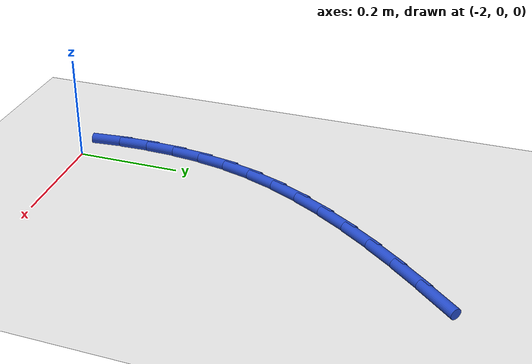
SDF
<sdf version="1.6">
 <world name="default">
  <model name="ground_plane">
   <static>1</static>
   <link name="link">
    <collision name="collision">
     <geometry><plane><normal>0 0 1</normal><size>100 100</size></plane></geometry>
     <surface><friction><ode><mu>100</mu><mu2>50</mu2></ode></friction></surface>
    </collision>
    <visual name="visual">
     <cast_shadows>0</cast_shadows>
     <geometry><plane><normal>0 0 1</normal><size>100 100</size></plane></geometry>
     <material>
      <script><uri>file://media/materials/scripts/gazebo.material</uri><name>Gazebo/WhiteGlow</name></script>
     </material>
    </visual>
   </link>
  </model>
  <model name="line">
   <link name="link_42">
    <pose>-1.7670566498943017 0.7211260672051247 0.01 0 1.57 0.8367380956712427</pose>
    <collision name="collision">
     <geometry><cylinder><radius>0.01</radius><length>0.08</length></cylinder></geometry>
    </collision>
    <visual name="visual">
     <material>
      <script><name>Gazebo/Blue</name><uri>file://media/materials/scripts/gazebo.material</uri></script>
     </material>
     <geometry><cylinder><radius>0.01</radius><length>0.08</length></cylinder></geometry>
    </visual>
   </link>
   <link name="link_43">
    <pose>-1.8085245185526984 0.6751656905597453 0.01 0 1.57 0.8675988459664883</pose>
    <collision name="collision">
     <geometry><cylinder><radius>0.01</radius><length>0.08</length></cylinder></geometry>
    </collision>
    <visual name="visual">
     <material>
      <script><name>Gazebo/Blue</name><uri>file://media/materials/scripts/gazebo.material</uri></script>
     </material>
     <geometry><cylinder><radius>0.01</radius><length>0.08</length></cylinder></geometry>
    </visual>
   </link>
   <link name="link_44">
    <pose>-1.8481152519373192 0.6284657887407599 0.01 0 1.57 0.9055203486958843</pose>
    <collision name="collision">
     <geometry><cylinder><radius>0.01</radius><length>0.08</length></cylinder></geometry>
    </collision>
    <visual name="visual">
     <material>
      <script><name>Gazebo/Blue</name><uri>file://media/materials/scripts/gazebo.material</uri></script>
     </material>
     <geometry><cylinder><radius>0.01</radius><length>0.08</length></cylinder></geometry>
    </visual>
   </link>
   <link name="link_45">
    <pose>-1.8854182591996684 0.5809214235570082 0.01 0 1.57 0.9510073499522687</pose>
    <collision name="collision">
     <geometry><cylinder><radius>0.01</radius><length>0.08</length></cylinder></geometry>
    </collision>
    <visual name="visual">
     <material>
      <script><name>Gazebo/Blue</name><uri>file://media/materials/scripts/gazebo.material</uri></script>
     </material>
     <geometry><cylinder><radius>0.01</radius><length>0.08</length></cylinder></geometry>
    </visual>
   </link>
   <link name="link_46">
    <pose>-1.920022949491249 0.5324276568173294 0.01 0 1.57 1.004567616594382</pose>
    <collision name="collision">
     <geometry><cylinder><radius>0.01</radius><length>0.08</length></cylinder></geometry>
    </collision>
    <visual name="visual">
     <material>
      <script><name>Gazebo/Blue</name><uri>file://media/materials/scripts/gazebo.material</uri></script>
     </material>
     <geometry><cylinder><radius>0.01</radius><length>0.08</length></cylinder></geometry>
    </visual>
   </link>
   <link name="link_47">
    <pose>-1.9515187319635647 0.4828795503305626 0.01 0 1.57 1.0666334518915765</pose>
    <collision name="collision">
     <geometry><cylinder><radius>0.01</radius><length>0.08</length></cylinder></geometry>
    </collision>
    <visual name="visual">
     <material>
      <script><name>Gazebo/Blue</name><uri>file://media/materials/scripts/gazebo.material</uri></script>
     </material>
     <geometry><cylinder><radius>0.01</radius><length>0.08</length></cylinder></geometry>
    </visual>
   </link>
   <link name="link_48">
    <pose>-1.9794950157681188 0.43217216590554736 0.01 0 1.57 1.137448296684143</pose>
    <collision name="collision">
     <geometry><cylinder><radius>0.01</radius><length>0.08</length></cylinder></geometry>
    </collision>
    <visual name="visual">
     <material>
      <script><name>Gazebo/Blue</name><uri>file://media/materials/scripts/gazebo.material</uri></script>
     </material>
     <geometry><cylinder><radius>0.01</radius><length>0.08</length></cylinder></geometry>
    </visual>
   </link>
   <link name="link_49">
    <pose>-2.0035412100564147 0.3802005653511227 0.01 0 1.57 1.2169205223460315</pose>
    <collision name="collision">
     <geometry><cylinder><radius>0.01</radius><length>0.08</length></cylinder></geometry>
    </collision>
    <visual name="visual">
     <material>
      <script><name>Gazebo/Blue</name><uri>file://media/materials/scripts/gazebo.material</uri></script>
     </material>
     <geometry><cylinder><radius>0.01</radius><length>0.08</length></cylinder></geometry>
    </visual>
   </link>
   <link name="link_50">
    <pose>-2.023246723979955 0.3268598104761278 0.01 0 1.57 1.304210862445191</pose>
    <collision name="collision">
     <geometry><cylinder><radius>0.01</radius><length>0.08</length></cylinder></geometry>
    </collision>
    <visual name="visual">
     <material>
      <script><name>Gazebo/Blue</name><uri>file://media/materials/scripts/gazebo.material</uri></script>
     </material>
     <geometry><cylinder><radius>0.01</radius><length>0.08</length></cylinder></geometry>
    </visual>
   </link>
   <link name="link_51">
    <pose>-2.0382142693756946 0.27205080633657747 0.01 0 1.57 1.3916781856973304</pose>
    <collision name="collision">
     <geometry><cylinder><radius>0.01</radius><length>0.08</length></cylinder></geometry>
    </collision>
    <visual name="visual">
     <material>
      <script><name>Gazebo/Blue</name><uri>file://media/materials/scripts/gazebo.material</uri></script>
     </material>
     <geometry><cylinder><radius>0.01</radius><length>0.08</length></cylinder></geometry>
    </visual>
   </link>
   <link name="link_52">
    <pose>-2.0483940562091005 0.21582709765402758 0.01 0 1.57 1.4716040291107175</pose>
    <collision name="collision">
     <geometry><cylinder><radius>0.01</radius><length>0.08</length></cylinder></geometry>
    </collision>
    <visual name="visual">
     <material>
      <script><name>Gazebo/Blue</name><uri>file://media/materials/scripts/gazebo.material</uri></script>
     </material>
     <geometry><cylinder><radius>0.01</radius><length>0.08</length></cylinder></geometry>
    </visual>
   </link>
   <link name="link_53">
    <pose>-2.054108565772067 0.15840575052207248 0.01 0 1.57 1.5435745517525294</pose>
    <collision name="collision">
     <geometry><cylinder><radius>0.01</radius><length>0.08</length></cylinder></geometry>
    </collision>
    <visual name="visual">
     <material>
      <script><name>Gazebo/Blue</name><uri>file://media/materials/scripts/gazebo.material</uri></script>
     </material>
     <geometry><cylinder><radius>0.01</radius><length>0.08</length></cylinder></geometry>
    </visual>
   </link>
   <link name="link_54">
    <pose>-2.055698544048193 0.10001185385861867 0.01 0 1.57 -1.5337190302723502</pose>
    <collision name="collision">
     <geometry><cylinder><radius>0.01</radius><length>0.08</length></cylinder></geometry>
    </collision>
    <visual name="visual">
     <material>
      <script><name>Gazebo/Blue</name><uri>file://media/materials/scripts/gazebo.material</uri></script>
     </material>
     <geometry><cylinder><radius>0.01</radius><length>0.08</length></cylinder></geometry>
    </visual>
   </link>
   <link name="link_55">
    <pose>-2.0535047370210813 0.040870496581572435 0.01 0 1.57 -1.4765989911447062</pose>
    <collision name="collision">
     <geometry><cylinder><radius>0.01</radius><length>0.08</length></cylinder></geometry>
    </collision>
    <visual name="visual">
     <material>
      <script><name>Gazebo/Blue</name><uri>file://media/materials/scripts/gazebo.material</uri></script>
     </material>
     <geometry><cylinder><radius>0.01</radius><length>0.08</length></cylinder></geometry>
    </visual>
   </link>
  </model>
 </world>
</sdf>
